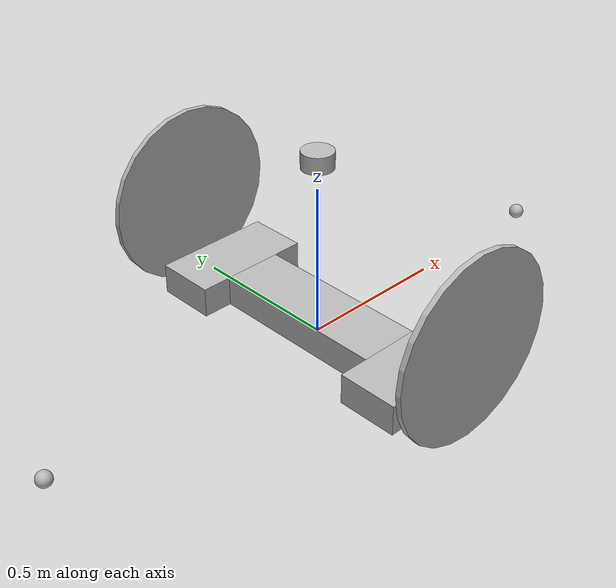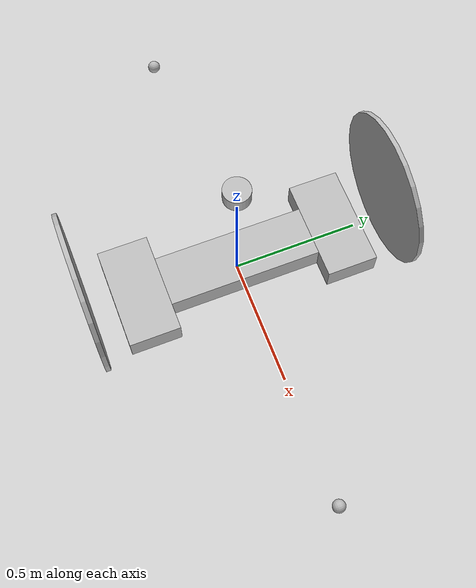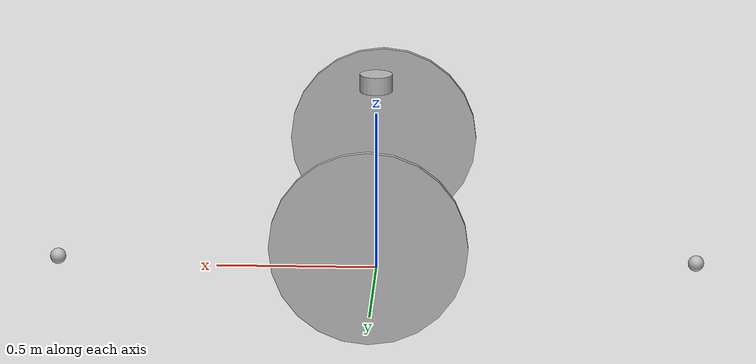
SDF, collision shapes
<?xml version="1.0" ?>
<sdf version="1.4">
  <model name="turtlebot3_burger">
    <pose>0.0 0.0 0.0 0.0 0.0 0.0</pose>

    <link name="base_footprint"/>

    <link name="base_link">

      <inertial>
        <pose>0 0 0 0 0 0</pose>
        <inertia>
          <ixx>17</ixx>
          <ixy>0</ixy>
          <ixz>0</ixz>
          <iyy>17</iyy>
          <iyz>0</iyz>
          <izz>40</izz>
        </inertia>
        <mass>20.0</mass>
      </inertial>

      <collision name="base_collision_left">
        <pose>0 0.4 0.05 0 0 0</pose>
        <geometry>
          <box>
            <size>0.4 0.2 0.1</size>
          </box>
        </geometry>
      </collision>

      <collision name="base_collision_center">
        <pose>0 0 0.05 0 0 0</pose>
        <geometry>
          <box>
            <size>0.2 0.6 0.1</size>
          </box>
        </geometry>
      </collision>

      <collision name="base_collision_right">
        <pose>0 -0.4 0.05 0 0 0</pose>
        <geometry>
          <box>
            <size>0.4 0.2 0.1</size>
          </box>
        </geometry>
      </collision>

      <visual name="base_visual_left">
        <pose>0 0.4 0.15 0 0 0</pose>
        <geometry>
          <box>
            <size>0.4 0.2 0.2</size>
          </box>
        </geometry>
      </visual>

      <visual name="base_visual_center">
        <pose>0 0 0.2 0 0 0</pose>
        <geometry>
          <box>
            <size>0.2 0.6 0.4</size>
          </box>
        </geometry>
      </visual>

      <visual name="base_visual_right">
        <pose>0 -0.4 0.15 0 0 0</pose>
        <geometry>
          <box>
            <size>0.4 0.2 0.2</size>
          </box>
        </geometry>
      </visual>
    </link>

    <link name="imu_link">
      <sensor name="tb3_imu" type="imu">
        <always_on>true</always_on>
        <update_rate>50</update_rate>
        <imu>
          <angular_velocity>
            <x>
              <noise type="gaussian">
                <mean>0.0</mean>
                <stddev>2e-4</stddev>
              </noise>
            </x>
            <y>
              <noise type="gaussian">
                <mean>0.0</mean>
                <stddev>2e-4</stddev>
              </noise>
            </y>
            <z>
              <noise type="gaussian">
                <mean>0.0</mean>
                <stddev>2e-4</stddev>
              </noise>
            </z>
          </angular_velocity>
          <linear_acceleration>
            <x>
              <noise type="gaussian">
                <mean>0.0</mean>
                <stddev>1.7e-2</stddev>
              </noise>
            </x>
            <y>
              <noise type="gaussian">
                <mean>0.0</mean>
                <stddev>1.7e-2</stddev>
              </noise>
            </y>
            <z>
              <noise type="gaussian">
                <mean>0.0</mean>
                <stddev>1.7e-2</stddev>
              </noise>
            </z>
          </linear_acceleration>
        </imu>
        <plugin name="turtlebot3_imu" filename="libgazebo_ros_imu_sensor.so">
          <ros>
            <remapping>~/out:=imu</remapping>
          </ros>
        </plugin>
      </sensor>
    </link>

    <link name="base_scan">
      <inertial>
        <pose>0 0 0.6 0 0 0</pose>
        <inertia>
          <ixx>0.001</ixx>
          <ixy>0.000</ixy>
          <ixz>0.000</ixz>
          <iyy>0.001</iyy>
          <iyz>0.000</iyz>
          <izz>0.001</izz>
        </inertia>
        <mass>0.114</mass>
      </inertial>

      <collision name="lidar_sensor_collision">
        <pose>0 0 0.6 0 0 0</pose>
        <geometry>
          <cylinder>
            <radius>0.0508</radius>
            <length>0.055</length>
          </cylinder>
        </geometry>
      </collision>

      <visual name="lidar_sensor_visual">
        <pose>0 0 0.6 0 0 0</pose>
        <geometry>
          <mesh>
            <uri>model://turtlebot3_burger/meshes/lds.dae</uri>
            <scale>0.001 0.001 0.001</scale>
          </mesh>
        </geometry>
      </visual>

      <sensor name="hls_lfcd_lds" type="ray">
        <always_on>true</always_on>
        <visualize>true</visualize>
        <pose>0 0 0.6 0 0 0</pose>
        <update_rate>10</update_rate>
        <ray>
          <scan>
            <horizontal>
              <samples>720</samples>
              <resolution>1.000000</resolution>
              <min_angle>0.000</min_angle>
              <max_angle>6.280000</max_angle>
            </horizontal>
          </scan>
          <range>
            <min>0.120000</min>
            <max>4</max>
            <resolution>0.015000</resolution>
          </range>
          <noise>
            <type>gaussian</type>
            <mean>0.0</mean>
            <stddev>0.01</stddev>
          </noise>
        </ray>
        <plugin name="turtlebot3_laserscan" filename="libgazebo_ros_ray_sensor.so">
          <ros>
            <remapping>~/out:=scan</remapping>
          </ros>
          <output_type>sensor_msgs/LaserScan</output_type>
          <frame_name>base_scan</frame_name>
        </plugin>
      </sensor>
    </link>

    <link name="wheel_left_link">

      <inertial>
        <pose>0 0.6 0.25 -1.57 0 0</pose>
        <inertia>
          <ixx>1.8158194e-03</ixx>
          <ixy>-9.3392e-12</ixy>
          <ixz>1.04909e-11</ixz>
          <iyy>3.2922126e-03</iyy>
          <iyz>5.75694e-11</iyz>
          <izz>1.8158194e-03</izz>
        </inertia>
        <mass>2.8498940e-02</mass>
      </inertial>
      <collision name="wheel_left_collision">
        <pose>0 0.6 0.25 -1.57 0 0</pose>
        <geometry>
          <cylinder>
            <radius>0.3</radius>
            <length>0.018</length>
          </cylinder>
        </geometry>
        <surface>
          <!-- This friction pamareter don't contain reliable data!! -->
          <friction>
            <ode>
              <mu>100000.0</mu>
              <mu2>100000.0</mu2>
              <fdir1>0 0 0</fdir1>
              <slip1>0.0</slip1>
              <slip2>0.0</slip2>
            </ode>
          </friction>
          <contact>
            <ode>
              <soft_cfm>0</soft_cfm>
              <soft_erp>0.2</soft_erp>
              <kp>1e+5</kp>
              <kd>1</kd>
              <max_vel>0.01</max_vel>
              <min_depth>0.001</min_depth>
            </ode>
          </contact>
        </surface>
      </collision>
      <visual name="wheel_left_visual">
        <pose>0 0.6 0.25 0 0 0</pose>
        <geometry>
          <mesh>
            <uri>model://turtlebot3_burger/meshes/tire.dae</uri>
            <scale>0.006 0.006 0.006</scale>
          </mesh>
        </geometry>
      </visual>
    </link>

    <link name="wheel_right_link">

      <inertial>
        <pose>0 -0.6 0.25 -1.57 0 0</pose>
        <inertia>
          <ixx>1.8158194e-03</ixx>
          <ixy>-9.3392e-12</ixy>
          <ixz>1.04909e-11</ixz>
          <iyy>3.2922126e-03</iyy>
          <iyz>5.75694e-11</iyz>
          <izz>1.8158194e-03</izz>
        </inertia>
        <mass>2.8498940e-02</mass>
      </inertial>
      <collision name="wheel_right_collision">
        <pose>0 -0.6 0.25 -1.57 0 0</pose>
        <geometry>
          <cylinder>
            <radius>0.3</radius>
            <length>0.018</length>
          </cylinder>
        </geometry>
        <surface>
          <!-- This friction pamareter don't contain reliable data!! -->
          <friction>
            <ode>
              <mu>100000.0</mu>
              <mu2>100000.0</mu2>
              <fdir1>0 0 0</fdir1>
              <slip1>0.0</slip1>
              <slip2>0.0</slip2>
            </ode>
          </friction>
          <contact>
            <ode>
              <soft_cfm>0</soft_cfm>
              <soft_erp>0.2</soft_erp>
              <kp>1e+5</kp>
              <kd>1</kd>
              <max_vel>0.01</max_vel>
              <min_depth>0.001</min_depth>
            </ode>
          </contact>
        </surface>
      </collision>
      <visual name="wheel_right_visual">
        <pose>0 -0.6 0.25 0 0 0</pose>
        <geometry>
          <mesh>
            <uri>model://turtlebot3_burger/meshes/tire.dae</uri>
            <scale>0.006 0.006 0.006</scale>
          </mesh>
        </geometry>
      </visual>
    </link>

    <link name='caster_back_link'>
      <pose>-1 0 0.025 -1.57 0 0</pose>
      <inertial>
        <mass>0.005</mass>
        <inertia>
          <ixx>0.001</ixx>
          <ixy>0.000</ixy>
          <ixz>0.000</ixz>
          <iyy>0.001</iyy>
          <iyz>0.000</iyz>
          <izz>0.001</izz>
        </inertia>
      </inertial>
      <collision name='collision'>
        <geometry>
          <sphere>
            <radius>0.025</radius>
          </sphere>
        </geometry>
        <surface>
          <contact>
            <ode>
              <soft_cfm>0</soft_cfm>
              <soft_erp>0.2</soft_erp>
              <kp>1e+5</kp>
              <kd>1</kd>
              <max_vel>0.01</max_vel>
              <min_depth>0.001</min_depth>
            </ode>
          </contact>
        </surface>
      </collision>
    </link>

    <link name='caster_front_link'>
      <pose>1 0 0.025 -1.57 0 0</pose>
      <inertial>
        <mass>0.005</mass>
        <inertia>
          <ixx>0.001</ixx>
          <ixy>0.000</ixy>
          <ixz>0.000</ixz>
          <iyy>0.001</iyy>
          <iyz>0.000</iyz>
          <izz>0.001</izz>
        </inertia>
      </inertial>
      <collision name='collision'>
        <geometry>
          <sphere>
            <radius>0.025000</radius>
          </sphere>
        </geometry>
        <surface>
          <contact>
            <ode>
              <soft_cfm>0</soft_cfm>
              <soft_erp>0.2</soft_erp>
              <kp>1e+5</kp>
              <kd>1</kd>
              <max_vel>0.01</max_vel>
              <min_depth>0.001</min_depth>
            </ode>
          </contact>
        </surface>
      </collision>
    </link>

    <link name="ultrasonic_front_link">
     <gravity>false</gravity>

      <pose>0.10 0.0 0.55 0 0 0</pose> <!-- 距离中心偏前10cm，高度7cm -->
      <sensor name="ultrasonic_front" type="ray">
        <pose>0 0 0 0 0 0</pose>
        <update_rate>10</update_rate>
        <ray>
          <scan>
            <horizontal>
              <samples>3</samples> <!-- 粗略模拟15°，3个角度点 -->
              <resolution>1</resolution>
              <min_angle>-0.1309</min_angle>
              <max_angle>0.1309</max_angle>
            </horizontal>
          </scan>
          <range>
            <min>0.02</min>       <!-- 最小探测范围 2cm -->
            <max>2.5</max>        <!-- 最大探测范围 2.5m -->
            <resolution>0.01</resolution>
          </range>
          <noise>
            <type>gaussian</type>
            <mean>0.0</mean>
            <stddev>0.01</stddev>
          </noise>
        </ray>
        <plugin name="ultrasonic_front_plugin" filename="libgazebo_ros_ray_sensor.so">
          <ros>
            <remapping>~/out:=ultrasonic/front</remapping>
          </ros>
          <output_type>sensor_msgs/Range</output_type>
          <frame_name>ultrasonic_front_link</frame_name>
        </plugin>
      </sensor>
    </link>

    <link name="ultrasonic_left_link">
      <gravity>false</gravity>
      <pose>0.0 0.10 0.55 0 0 1.5708</pose>
      <sensor name="ultrasonic_left" type="ray">
        <pose>0 0 0 0 0 0</pose>
        <update_rate>10</update_rate>
        <ray>
          <scan>
            <horizontal>
              <samples>3</samples> <!-- 粗略模拟15°，3个角度点 -->
              <resolution>1</resolution>
              <min_angle>-0.1309</min_angle>
              <max_angle>0.1309</max_angle>
            </horizontal>
          </scan>
          <range>
            <min>0.02</min>       <!-- 最小探测范围 2cm -->
            <max>2.5</max>        <!-- 最大探测范围 2.5m -->
            <resolution>0.01</resolution>
          </range>
          <noise>
            <type>gaussian</type>
            <mean>0.0</mean>
            <stddev>0.01</stddev>
          </noise>
        </ray>
        <plugin name="ultrasonic_left_plugin" filename="libgazebo_ros_ray_sensor.so">
          <ros>
            <remapping>~/out:=ultrasonic/left</remapping>
          </ros>
          <output_type>sensor_msgs/Range</output_type>
          <frame_name>ultrasonic_left_link</frame_name>
        </plugin>
      </sensor>
    </link>

    <link name="ultrasonic_right_link">
      <gravity>false</gravity>
      <pose>0.0 -0.10 0.55 0 0 -1.5708</pose> <!-- 距离中心偏前10cm，高度7cm -->
      <sensor name="ultrasonic_right" type="ray">
        <pose>0 0 0 0 0 0</pose>
        <update_rate>10</update_rate>
        <ray>
          <scan>
            <horizontal>
              <samples>3</samples> <!-- 粗略模拟15°，3个角度点 -->
              <resolution>1</resolution>
              <min_angle>-0.1309</min_angle>
              <max_angle>0.1309</max_angle>
            </horizontal>
          </scan>
          <range>
            <min>0.02</min>       <!-- 最小探测范围 2cm -->
            <max>2.5</max>        <!-- 最大探测范围 2.5m -->
            <resolution>0.01</resolution>
          </range>
          <noise>
            <type>gaussian</type>
            <mean>0.0</mean>
            <stddev>0.01</stddev>
          </noise>
        </ray>
        <plugin name="ultrasonic_right_plugin" filename="libgazebo_ros_ray_sensor.so">
          <ros>
            <remapping>~/out:=ultrasonic/right</remapping>
          </ros>
          <output_type>sensor_msgs/Range</output_type>
          <frame_name>ultrasonic_right_link</frame_name>
        </plugin>
      </sensor>
    </link>

    <joint name="base_joint" type="fixed">
      <parent>base_footprint</parent>
      <child>base_link</child>
      <pose>0.0 0.0 0.010 0 0 0</pose>
    </joint>

    <joint name="wheel_left_joint" type="revolute">
      <parent>base_link</parent>
      <child>wheel_left_link</child>
      <pose>0 0.6 0.25 -1.57 0 0</pose>
      <axis>
        <xyz>0 0 1</xyz>
        <dynamics>
          <damping>2.0</damping>
        </dynamics>
      </axis>
    </joint>

    <joint name="wheel_right_joint" type="revolute">
      <parent>base_link</parent>
      <child>wheel_right_link</child>
      <pose>0 -0.6 0.25 -1.57 0 0</pose>
      <axis>
        <xyz>0 0 1</xyz>
        <dynamics>
          <damping>2.0</damping>
        </dynamics>
      </axis>
    </joint>

    <joint name='caster_back_joint' type='ball'>
      <parent>base_link</parent>
      <child>caster_back_link</child>
    </joint>

    <joint name="imu_joint" type="fixed">
      <parent>base_link</parent>
      <child>imu_link</child>
      <pose>0 0 0 0 0 0</pose>
      <axis>
        <xyz>0 0 1</xyz>
      </axis>
    </joint>

    <joint name="lidar_joint" type="fixed">
      <parent>base_link</parent>
      <child>base_scan</child>
      <pose>0 0 0.6 0 0 0</pose>
      <axis>
        <xyz>0 0 1</xyz>
      </axis>
    </joint>

    <joint name="ultrasonic_front_joint" type="fixed">
  <parent>base_link</parent>
  <child>ultrasonic_front_link</child>
</joint>

<joint name="ultrasonic_left_joint" type="fixed">
  <parent>base_link</parent>
  <child>ultrasonic_left_link</child>
</joint>

<joint name="ultrasonic_right_joint" type="fixed">
  <parent>base_link</parent>
  <child>ultrasonic_right_link</child>
</joint>

    <plugin name="turtlebot3_diff_drive" filename="libgazebo_ros_diff_drive.so">

      <ros>
      </ros>

      <update_rate>20</update_rate>

      <!-- wheels -->
      <left_joint>wheel_left_joint</left_joint>
      <right_joint>wheel_right_joint</right_joint>

      <!-- kinematics -->
      <wheel_separation>1.2</wheel_separation>
      <wheel_diameter>0.3</wheel_diameter>

      <!-- limits -->
      <max_wheel_torque>6.67</max_wheel_torque>
      <max_wheel_acceleration>2.0</max_wheel_acceleration>

      <command_topic>cmd_vel</command_topic>

      <!-- output -->
      <publish_odom>true</publish_odom>
      <publish_odom_tf>true</publish_odom_tf>
      <publish_wheel_tf>false</publish_wheel_tf>

      <odometry_topic>odom</odometry_topic>
      <odometry_frame>odom</odometry_frame>
      <robot_base_frame>base_footprint</robot_base_frame>

    </plugin>

    <plugin name="turtlebot3_joint_state" filename="libgazebo_ros_joint_state_publisher.so">
      <ros>
        <remapping>~/out:=joint_states</remapping>
      </ros>
      <update_rate>20</update_rate>
      <joint_name>wheel_left_joint</joint_name>
      <joint_name>wheel_right_joint</joint_name>
    </plugin>
  </model>
</sdf>
